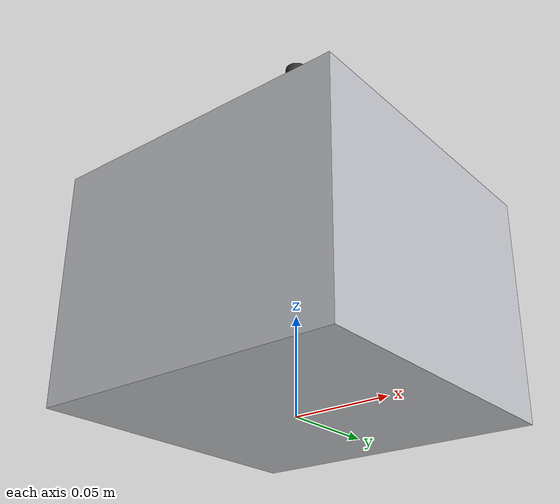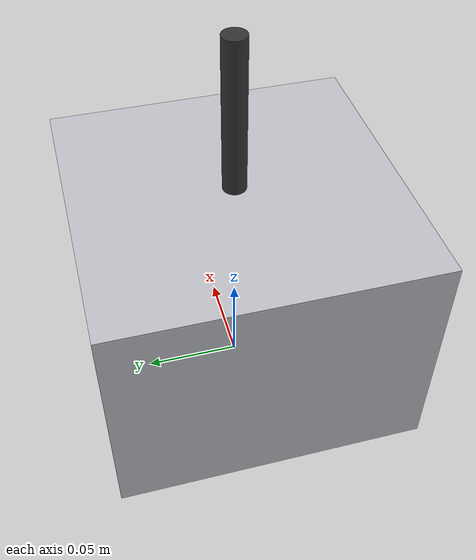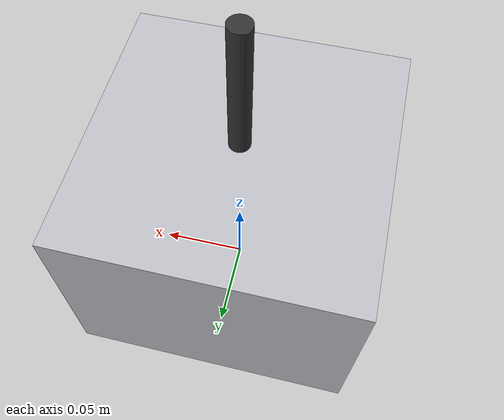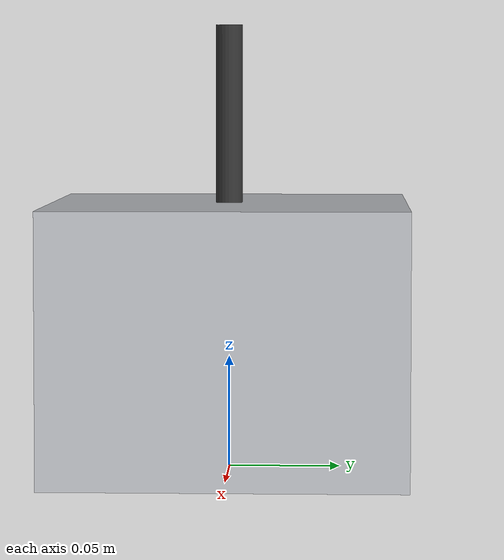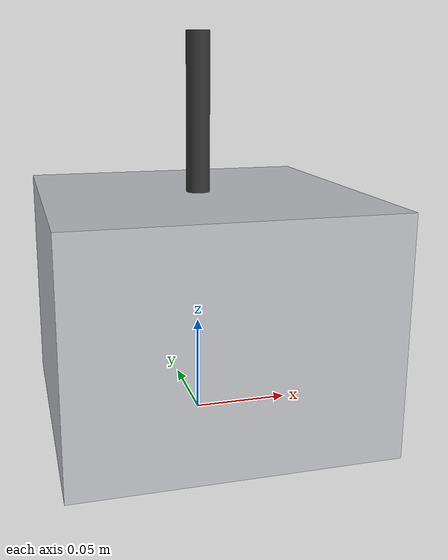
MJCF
<?xml version="1.0" encoding="utf-8"?>
<mujoco model="wire_bonder">
  <compiler angle="radian" autolimits="true"/>
  <default>
    <default class="body"><geom contype="1" conaffinity="1"/></default>
  </default>
  <worldbody>
    <body name="base">
      <geom type="box" size="0.08 0.08 0.06" pos="0 0 0.06" rgba="0.75 0.76 0.78 1" class="body"/>
      <geom type="box" size="0.024 0.004 0.015" pos="-0.04 -0.07200000000000001 0.09" rgba="0.9 0.7 0.1 1" class="body"/>
      <body name="bonding_head" pos="0 0 0.15">
        <joint name="bonding_head_joint" type="slide" axis="0 0 1" range="-0.04 0" damping="1.0" frictionloss="0.3"/>
  <geom type="cylinder" size="0.006 0.05" pos="0 0 0" rgba="0.2 0.2 0.2 1" class="body"/>
      </body>
    </body>
  </worldbody>
</mujoco>
